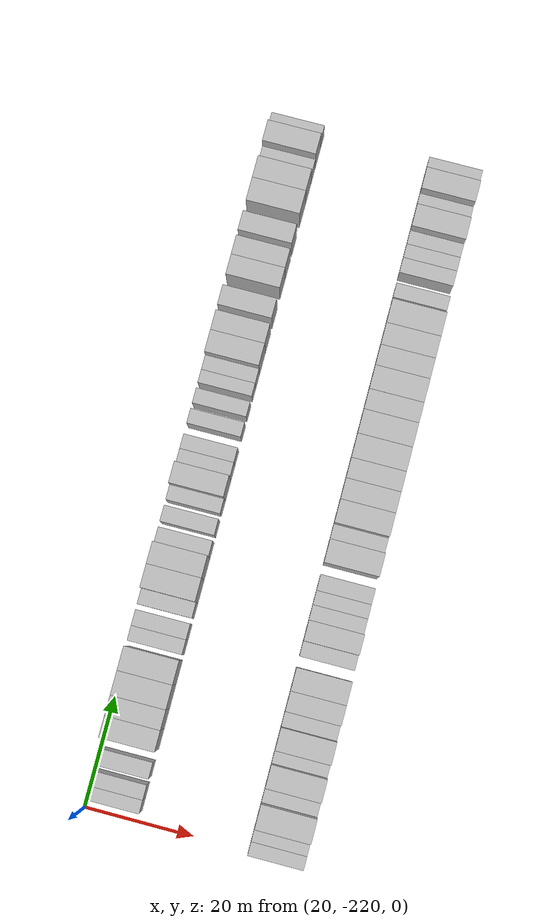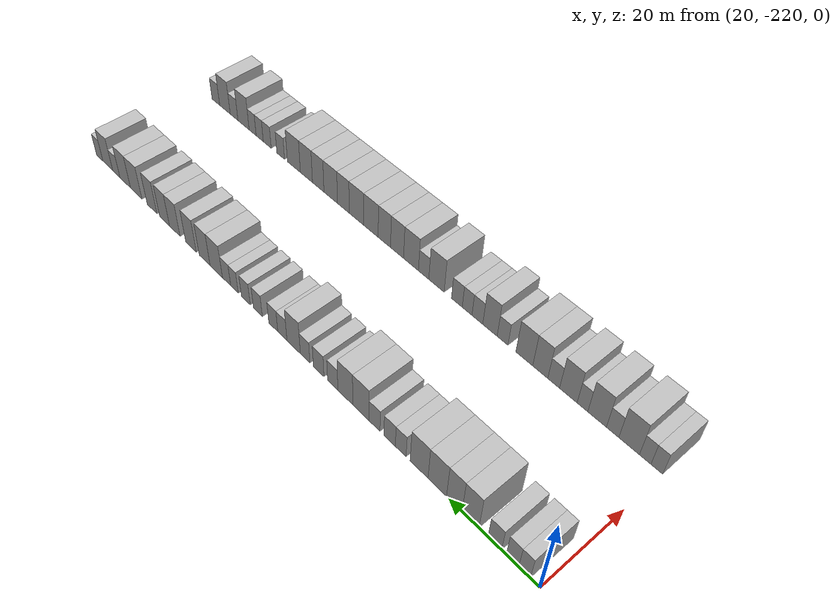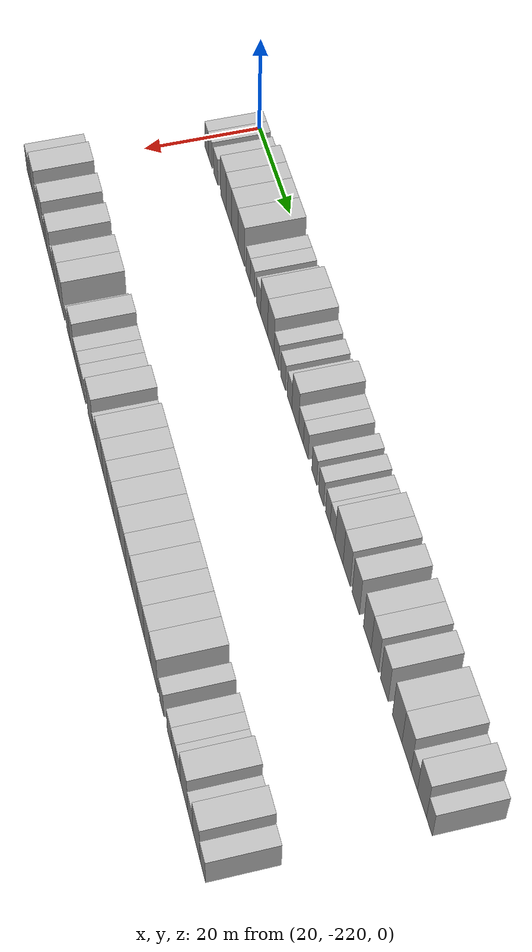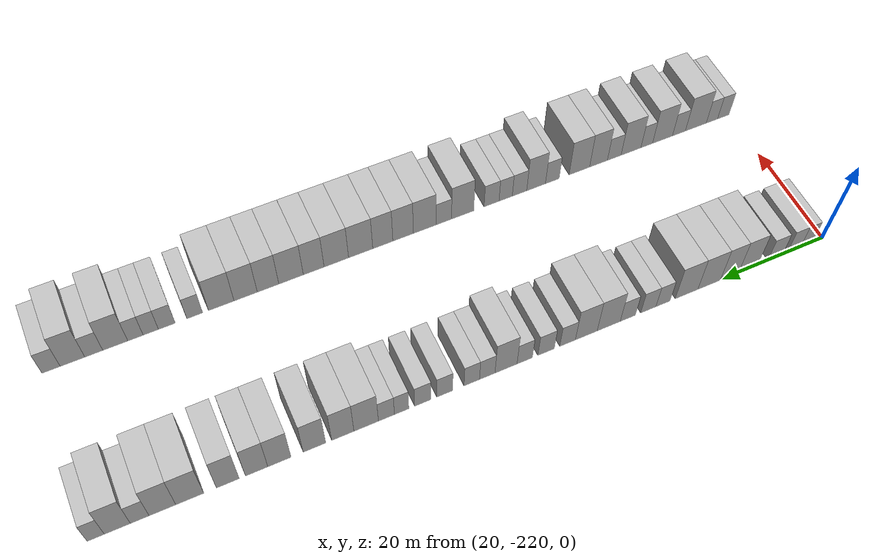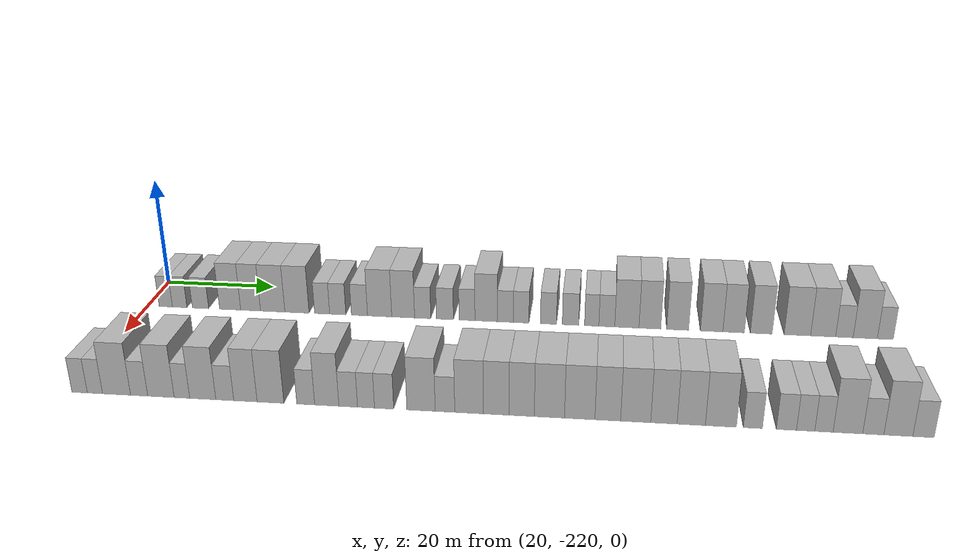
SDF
<sdf version="1.6">
 <world name="default">
  <model name="building_1">
   <static>1</static>
   <pose>25.0000 -216.7760 0 0.000000 0.000000 0.000000</pose>
   <link name="link">
    <pose>0 0 3.00 0 0 0</pose>
    <collision name="collision"><geometry><box><size>10.0000 2.4479 6.0000</size></box></geometry></collision>
    <visual name="visual">
     <cast_shadows>0</cast_shadows>
     <geometry><box><size>10.0000 2.4479 6.0000</size></box></geometry>
     <material>
      <script>
       <uri>model://HANNAS_wall/materials/scripts</uri>
       <uri>model://HANNAS_wall/materials/textures</uri>
       <name>vrc/HANNAS_wall</name>
      </script>
     </material>
    </visual>
   </link>
  </model>
  <model name="building_2">
   <static>1</static>
   <pose>25.0000 -214.2134 0 0.000000 0.000000 0.000000</pose>
   <link name="link">
    <pose>0 0 3.00 0 0 0</pose>
    <collision name="collision"><geometry><box><size>10.0000 2.6773 6.0000</size></box></geometry></collision>
    <visual name="visual">
     <cast_shadows>0</cast_shadows>
     <geometry><box><size>10.0000 2.6773 6.0000</size></box></geometry>
     <material>
      <script>
       <uri>model://HANNAS_wall/materials/scripts</uri>
       <uri>model://HANNAS_wall/materials/textures</uri>
       <name>vrc/HANNAS_wall</name>
      </script>
     </material>
    </visual>
   </link>
  </model>
  <model name="building_3">
   <static>1</static>
   <pose>25.0000 -210.3815 0 0.000000 0.000000 0.000000</pose>
   <link name="link">
    <pose>0 0 3.00 0 0 0</pose>
    <collision name="collision"><geometry><box><size>10.0000 2.9865 6.0000</size></box></geometry></collision>
    <visual name="visual">
     <cast_shadows>0</cast_shadows>
     <geometry><box><size>10.0000 2.9865 6.0000</size></box></geometry>
     <material>
      <script>
       <uri>model://HANNAS_wall/materials/scripts</uri>
       <uri>model://HANNAS_wall/materials/textures</uri>
       <name>vrc/HANNAS_wall</name>
      </script>
     </material>
    </visual>
   </link>
  </model>
  <model name="building_4">
   <static>1</static>
   <pose>25.0000 -204.9679 0 0.000000 0.000000 0.000000</pose>
   <link name="link">
    <pose>0 0 4.50 0 0 0</pose>
    <collision name="collision"><geometry><box><size>10.0000 3.8408 9.0000</size></box></geometry></collision>
    <visual name="visual">
     <cast_shadows>0</cast_shadows>
     <geometry><box><size>10.0000 3.8408 9.0000</size></box></geometry>
     <material>
      <script>
       <uri>model://HANNAS_wall/materials/scripts</uri>
       <uri>model://HANNAS_wall/materials/textures</uri>
       <name>vrc/HANNAS_wall</name>
      </script>
     </material>
    </visual>
   </link>
  </model>
  <model name="building_5">
   <static>1</static>
   <pose>25.0000 -201.2389 0 0.000000 0.000000 0.000000</pose>
   <link name="link">
    <pose>0 0 4.50 0 0 0</pose>
    <collision name="collision"><geometry><box><size>10.0000 3.6171 9.0000</size></box></geometry></collision>
    <visual name="visual">
     <cast_shadows>0</cast_shadows>
     <geometry><box><size>10.0000 3.6171 9.0000</size></box></geometry>
     <material>
      <script>
       <uri>model://HANNAS_wall/materials/scripts</uri>
       <uri>model://HANNAS_wall/materials/textures</uri>
       <name>vrc/HANNAS_wall</name>
      </script>
     </material>
    </visual>
   </link>
  </model>
  <model name="building_6">
   <static>1</static>
   <pose>25.0000 -197.2296 0 0.000000 0.000000 0.000000</pose>
   <link name="link">
    <pose>0 0 4.50 0 0 0</pose>
    <collision name="collision"><geometry><box><size>10.0000 4.4016 9.0000</size></box></geometry></collision>
    <visual name="visual">
     <cast_shadows>0</cast_shadows>
     <geometry><box><size>10.0000 4.4016 9.0000</size></box></geometry>
     <material>
      <script>
       <uri>model://HANNAS_wall/materials/scripts</uri>
       <uri>model://HANNAS_wall/materials/textures</uri>
       <name>vrc/HANNAS_wall</name>
      </script>
     </material>
    </visual>
   </link>
  </model>
  <model name="building_7">
   <static>1</static>
   <pose>25.0000 -192.8415 0 0.000000 0.000000 0.000000</pose>
   <link name="link">
    <pose>0 0 4.50 0 0 0</pose>
    <collision name="collision"><geometry><box><size>10.0000 4.3745 9.0000</size></box></geometry></collision>
    <visual name="visual">
     <cast_shadows>0</cast_shadows>
     <geometry><box><size>10.0000 4.3745 9.0000</size></box></geometry>
     <material>
      <script>
       <uri>model://HANNAS_wall/materials/scripts</uri>
       <uri>model://HANNAS_wall/materials/textures</uri>
       <name>vrc/HANNAS_wall</name>
      </script>
     </material>
    </visual>
   </link>
  </model>
  <model name="building_8">
   <static>1</static>
   <pose>25.0000 -188.3045 0 0.000000 0.000000 0.000000</pose>
   <link name="link">
    <pose>0 0 3.00 0 0 0</pose>
    <collision name="collision"><geometry><box><size>10.0000 2.6996 6.0000</size></box></geometry></collision>
    <visual name="visual">
     <cast_shadows>0</cast_shadows>
     <geometry><box><size>10.0000 2.6996 6.0000</size></box></geometry>
     <material>
      <script>
       <uri>model://HANNAS_wall/materials/scripts</uri>
       <uri>model://HANNAS_wall/materials/textures</uri>
       <name>vrc/HANNAS_wall</name>
      </script>
     </material>
    </visual>
   </link>
  </model>
  <model name="building_9">
   <static>1</static>
   <pose>25.0000 -185.5023 0 0.000000 0.000000 0.000000</pose>
   <link name="link">
    <pose>0 0 3.00 0 0 0</pose>
    <collision name="collision"><geometry><box><size>10.0000 2.9047 6.0000</size></box></geometry></collision>
    <visual name="visual">
     <cast_shadows>0</cast_shadows>
     <geometry><box><size>10.0000 2.9047 6.0000</size></box></geometry>
     <material>
      <script>
       <uri>model://HANNAS_wall/materials/scripts</uri>
       <uri>model://HANNAS_wall/materials/textures</uri>
       <name>vrc/HANNAS_wall</name>
      </script>
     </material>
    </visual>
   </link>
  </model>
  <model name="building_10">
   <static>1</static>
   <pose>25.0000 -181.6182 0 0.000000 0.000000 0.000000</pose>
   <link name="link">
    <pose>0 0 3.00 0 0 0</pose>
    <collision name="collision"><geometry><box><size>10.0000 2.8635 6.0000</size></box></geometry></collision>
    <visual name="visual">
     <cast_shadows>0</cast_shadows>
     <geometry><box><size>10.0000 2.8635 6.0000</size></box></geometry>
     <material>
      <script>
       <uri>model://HANNAS_wall/materials/scripts</uri>
       <uri>model://HANNAS_wall/materials/textures</uri>
       <name>vrc/HANNAS_wall</name>
      </script>
     </material>
    </visual>
   </link>
  </model>
  <model name="building_11">
   <static>1</static>
   <pose>25.0000 -178.0315 0 0.000000 0.000000 0.000000</pose>
   <link name="link">
    <pose>0 0 4.50 0 0 0</pose>
    <collision name="collision"><geometry><box><size>10.0000 4.3098 9.0000</size></box></geometry></collision>
    <visual name="visual">
     <cast_shadows>0</cast_shadows>
     <geometry><box><size>10.0000 4.3098 9.0000</size></box></geometry>
     <material>
      <script>
       <uri>model://HANNAS_wall/materials/scripts</uri>
       <uri>model://HANNAS_wall/materials/textures</uri>
       <name>vrc/HANNAS_wall</name>
      </script>
     </material>
    </visual>
   </link>
  </model>
  <model name="building_12">
   <static>1</static>
   <pose>25.0000 -173.8464 0 0.000000 0.000000 0.000000</pose>
   <link name="link">
    <pose>0 0 4.50 0 0 0</pose>
    <collision name="collision"><geometry><box><size>10.0000 4.0604 9.0000</size></box></geometry></collision>
    <visual name="visual">
     <cast_shadows>0</cast_shadows>
     <geometry><box><size>10.0000 4.0604 9.0000</size></box></geometry>
     <material>
      <script>
       <uri>model://HANNAS_wall/materials/scripts</uri>
       <uri>model://HANNAS_wall/materials/textures</uri>
       <name>vrc/HANNAS_wall</name>
      </script>
     </material>
    </visual>
   </link>
  </model>
  <model name="building_13">
   <static>1</static>
   <pose>25.0000 -170.3806 0 0.000000 0.000000 0.000000</pose>
   <link name="link">
    <pose>0 0 3.00 0 0 0</pose>
    <collision name="collision"><geometry><box><size>10.0000 2.8712 6.0000</size></box></geometry></collision>
    <visual name="visual">
     <cast_shadows>0</cast_shadows>
     <geometry><box><size>10.0000 2.8712 6.0000</size></box></geometry>
     <material>
      <script>
       <uri>model://HANNAS_wall/materials/scripts</uri>
       <uri>model://HANNAS_wall/materials/textures</uri>
       <name>vrc/HANNAS_wall</name>
      </script>
     </material>
    </visual>
   </link>
  </model>
  <model name="building_14">
   <static>1</static>
   <pose>25.0000 -166.4511 0 0.000000 0.000000 0.000000</pose>
   <link name="link">
    <pose>0 0 3.00 0 0 0</pose>
    <collision name="collision"><geometry><box><size>10.0000 2.9879 6.0000</size></box></geometry></collision>
    <visual name="visual">
     <cast_shadows>0</cast_shadows>
     <geometry><box><size>10.0000 2.9879 6.0000</size></box></geometry>
     <material>
      <script>
       <uri>model://HANNAS_wall/materials/scripts</uri>
       <uri>model://HANNAS_wall/materials/textures</uri>
       <name>vrc/HANNAS_wall</name>
      </script>
     </material>
    </visual>
   </link>
  </model>
  <model name="building_15">
   <static>1</static>
   <pose>25.0000 -162.5718 0 0.000000 0.000000 0.000000</pose>
   <link name="link">
    <pose>0 0 3.00 0 0 0</pose>
    <collision name="collision"><geometry><box><size>10.0000 2.7707 6.0000</size></box></geometry></collision>
    <visual name="visual">
     <cast_shadows>0</cast_shadows>
     <geometry><box><size>10.0000 2.7707 6.0000</size></box></geometry>
     <material>
      <script>
       <uri>model://HANNAS_wall/materials/scripts</uri>
       <uri>model://HANNAS_wall/materials/textures</uri>
       <name>vrc/HANNAS_wall</name>
      </script>
     </material>
    </visual>
   </link>
  </model>
  <model name="building_16">
   <static>1</static>
   <pose>25.0000 -159.2121 0 0.000000 0.000000 0.000000</pose>
   <link name="link">
    <pose>0 0 4.50 0 0 0</pose>
    <collision name="collision"><geometry><box><size>10.0000 3.9487 9.0000</size></box></geometry></collision>
    <visual name="visual">
     <cast_shadows>0</cast_shadows>
     <geometry><box><size>10.0000 3.9487 9.0000</size></box></geometry>
     <material>
      <script>
       <uri>model://HANNAS_wall/materials/scripts</uri>
       <uri>model://HANNAS_wall/materials/textures</uri>
       <name>vrc/HANNAS_wall</name>
      </script>
     </material>
    </visual>
   </link>
  </model>
  <model name="building_17">
   <static>1</static>
   <pose>25.0000 -155.8626 0 0.000000 0.000000 0.000000</pose>
   <link name="link">
    <pose>0 0 3.00 0 0 0</pose>
    <collision name="collision"><geometry><box><size>10.0000 2.7504 6.0000</size></box></geometry></collision>
    <visual name="visual">
     <cast_shadows>0</cast_shadows>
     <geometry><box><size>10.0000 2.7504 6.0000</size></box></geometry>
     <material>
      <script>
       <uri>model://HANNAS_wall/materials/scripts</uri>
       <uri>model://HANNAS_wall/materials/textures</uri>
       <name>vrc/HANNAS_wall</name>
      </script>
     </material>
    </visual>
   </link>
  </model>
  <model name="building_18">
   <static>1</static>
   <pose>25.0000 -153.1238 0 0.000000 0.000000 0.000000</pose>
   <link name="link">
    <pose>0 0 3.00 0 0 0</pose>
    <collision name="collision"><geometry><box><size>10.0000 2.7271 6.0000</size></box></geometry></collision>
    <visual name="visual">
     <cast_shadows>0</cast_shadows>
     <geometry><box><size>10.0000 2.7271 6.0000</size></box></geometry>
     <material>
      <script>
       <uri>model://HANNAS_wall/materials/scripts</uri>
       <uri>model://HANNAS_wall/materials/textures</uri>
       <name>vrc/HANNAS_wall</name>
      </script>
     </material>
    </visual>
   </link>
  </model>
  <model name="building_19">
   <static>1</static>
   <pose>25.0000 -148.3723 0 0.000000 0.000000 0.000000</pose>
   <link name="link">
    <pose>0 0 3.00 0 0 0</pose>
    <collision name="collision"><geometry><box><size>10.0000 2.7759 6.0000</size></box></geometry></collision>
    <visual name="visual">
     <cast_shadows>0</cast_shadows>
     <geometry><box><size>10.0000 2.7759 6.0000</size></box></geometry>
     <material>
      <script>
       <uri>model://HANNAS_wall/materials/scripts</uri>
       <uri>model://HANNAS_wall/materials/textures</uri>
       <name>vrc/HANNAS_wall</name>
      </script>
     </material>
    </visual>
   </link>
  </model>
  <model name="building_20">
   <static>1</static>
   <pose>25.0000 -144.5683 0 0.000000 0.000000 0.000000</pose>
   <link name="link">
    <pose>0 0 3.00 0 0 0</pose>
    <collision name="collision"><geometry><box><size>10.0000 2.8321 6.0000</size></box></geometry></collision>
    <visual name="visual">
     <cast_shadows>0</cast_shadows>
     <geometry><box><size>10.0000 2.8321 6.0000</size></box></geometry>
     <material>
      <script>
       <uri>model://HANNAS_wall/materials/scripts</uri>
       <uri>model://HANNAS_wall/materials/textures</uri>
       <name>vrc/HANNAS_wall</name>
      </script>
     </material>
    </visual>
   </link>
  </model>
  <model name="building_21">
   <static>1</static>
   <pose>25.0000 -140.9230 0 0.000000 0.000000 0.000000</pose>
   <link name="link">
    <pose>0 0 3.00 0 0 0</pose>
    <collision name="collision"><geometry><box><size>10.0000 2.4585 6.0000</size></box></geometry></collision>
    <visual name="visual">
     <cast_shadows>0</cast_shadows>
     <geometry><box><size>10.0000 2.4585 6.0000</size></box></geometry>
     <material>
      <script>
       <uri>model://HANNAS_wall/materials/scripts</uri>
       <uri>model://HANNAS_wall/materials/textures</uri>
       <name>vrc/HANNAS_wall</name>
      </script>
     </material>
    </visual>
   </link>
  </model>
  <model name="building_22">
   <static>1</static>
   <pose>25.0000 -138.3307 0 0.000000 0.000000 0.000000</pose>
   <link name="link">
    <pose>0 0 3.00 0 0 0</pose>
    <collision name="collision"><geometry><box><size>10.0000 2.7261 6.0000</size></box></geometry></collision>
    <visual name="visual">
     <cast_shadows>0</cast_shadows>
     <geometry><box><size>10.0000 2.7261 6.0000</size></box></geometry>
     <material>
      <script>
       <uri>model://HANNAS_wall/materials/scripts</uri>
       <uri>model://HANNAS_wall/materials/textures</uri>
       <name>vrc/HANNAS_wall</name>
      </script>
     </material>
    </visual>
   </link>
  </model>
  <model name="building_23">
   <static>1</static>
   <pose>25.0000 -134.8988 0 0.000000 0.000000 0.000000</pose>
   <link name="link">
    <pose>0 0 4.50 0 0 0</pose>
    <collision name="collision"><geometry><box><size>10.0000 4.1376 9.0000</size></box></geometry></collision>
    <visual name="visual">
     <cast_shadows>0</cast_shadows>
     <geometry><box><size>10.0000 4.1376 9.0000</size></box></geometry>
     <material>
      <script>
       <uri>model://HANNAS_wall/materials/scripts</uri>
       <uri>model://HANNAS_wall/materials/textures</uri>
       <name>vrc/HANNAS_wall</name>
      </script>
     </material>
    </visual>
   </link>
  </model>
  <model name="building_24">
   <static>1</static>
   <pose>25.0000 -130.9701 0 0.000000 0.000000 0.000000</pose>
   <link name="link">
    <pose>0 0 4.50 0 0 0</pose>
    <collision name="collision"><geometry><box><size>10.0000 3.7199 9.0000</size></box></geometry></collision>
    <visual name="visual">
     <cast_shadows>0</cast_shadows>
     <geometry><box><size>10.0000 3.7199 9.0000</size></box></geometry>
     <material>
      <script>
       <uri>model://HANNAS_wall/materials/scripts</uri>
       <uri>model://HANNAS_wall/materials/textures</uri>
       <name>vrc/HANNAS_wall</name>
      </script>
     </material>
    </visual>
   </link>
  </model>
  <model name="building_25">
   <static>1</static>
   <pose>25.0000 -126.2509 0 0.000000 0.000000 0.000000</pose>
   <link name="link">
    <pose>0 0 4.50 0 0 0</pose>
    <collision name="collision"><geometry><box><size>10.0000 3.7184 9.0000</size></box></geometry></collision>
    <visual name="visual">
     <cast_shadows>0</cast_shadows>
     <geometry><box><size>10.0000 3.7184 9.0000</size></box></geometry>
     <material>
      <script>
       <uri>model://HANNAS_wall/materials/scripts</uri>
       <uri>model://HANNAS_wall/materials/textures</uri>
       <name>vrc/HANNAS_wall</name>
      </script>
     </material>
    </visual>
   </link>
  </model>
  <model name="building_26">
   <static>1</static>
   <pose>25.0000 -120.4995 0 0.000000 0.000000 0.000000</pose>
   <link name="link">
    <pose>0 0 4.50 0 0 0</pose>
    <collision name="collision"><geometry><box><size>10.0000 3.7845 9.0000</size></box></geometry></collision>
    <visual name="visual">
     <cast_shadows>0</cast_shadows>
     <geometry><box><size>10.0000 3.7845 9.0000</size></box></geometry>
     <material>
      <script>
       <uri>model://HANNAS_wall/materials/scripts</uri>
       <uri>model://HANNAS_wall/materials/textures</uri>
       <name>vrc/HANNAS_wall</name>
      </script>
     </material>
    </visual>
   </link>
  </model>
  <model name="building_27">
   <static>1</static>
   <pose>25.0000 -116.7994 0 0.000000 0.000000 0.000000</pose>
   <link name="link">
    <pose>0 0 4.50 0 0 0</pose>
    <collision name="collision"><geometry><box><size>10.0000 3.6157 9.0000</size></box></geometry></collision>
    <visual name="visual">
     <cast_shadows>0</cast_shadows>
     <geometry><box><size>10.0000 3.6157 9.0000</size></box></geometry>
     <material>
      <script>
       <uri>model://HANNAS_wall/materials/scripts</uri>
       <uri>model://HANNAS_wall/materials/textures</uri>
       <name>vrc/HANNAS_wall</name>
      </script>
     </material>
    </visual>
   </link>
  </model>
  <model name="building_28">
   <static>1</static>
   <pose>25.0000 -112.1677 0 0.000000 0.000000 0.000000</pose>
   <link name="link">
    <pose>0 0 4.50 0 0 0</pose>
    <collision name="collision"><geometry><box><size>10.0000 3.6477 9.0000</size></box></geometry></collision>
    <visual name="visual">
     <cast_shadows>0</cast_shadows>
     <geometry><box><size>10.0000 3.6477 9.0000</size></box></geometry>
     <material>
      <script>
       <uri>model://HANNAS_wall/materials/scripts</uri>
       <uri>model://HANNAS_wall/materials/textures</uri>
       <name>vrc/HANNAS_wall</name>
      </script>
     </material>
    </visual>
   </link>
  </model>
  <model name="building_29">
   <static>1</static>
   <pose>25.0000 -106.1421 0 0.000000 0.000000 0.000000</pose>
   <link name="link">
    <pose>0 0 4.50 0 0 0</pose>
    <collision name="collision"><geometry><box><size>10.0000 4.4034 9.0000</size></box></geometry></collision>
    <visual name="visual">
     <cast_shadows>0</cast_shadows>
     <geometry><box><size>10.0000 4.4034 9.0000</size></box></geometry>
     <material>
      <script>
       <uri>model://HANNAS_wall/materials/scripts</uri>
       <uri>model://HANNAS_wall/materials/textures</uri>
       <name>vrc/HANNAS_wall</name>
      </script>
     </material>
    </visual>
   </link>
  </model>
  <model name="building_30">
   <static>1</static>
   <pose>25.0000 -101.8638 0 0.000000 0.000000 0.000000</pose>
   <link name="link">
    <pose>0 0 4.50 0 0 0</pose>
    <collision name="collision"><geometry><box><size>10.0000 4.1531 9.0000</size></box></geometry></collision>
    <visual name="visual">
     <cast_shadows>0</cast_shadows>
     <geometry><box><size>10.0000 4.1531 9.0000</size></box></geometry>
     <material>
      <script>
       <uri>model://HANNAS_wall/materials/scripts</uri>
       <uri>model://HANNAS_wall/materials/textures</uri>
       <name>vrc/HANNAS_wall</name>
      </script>
     </material>
    </visual>
   </link>
  </model>
  <model name="building_31">
   <static>1</static>
   <pose>25.0000 -98.3451 0 0.000000 0.000000 0.000000</pose>
   <link name="link">
    <pose>0 0 3.00 0 0 0</pose>
    <collision name="collision"><geometry><box><size>10.0000 2.8844 6.0000</size></box></geometry></collision>
    <visual name="visual">
     <cast_shadows>0</cast_shadows>
     <geometry><box><size>10.0000 2.8844 6.0000</size></box></geometry>
     <material>
      <script>
       <uri>model://HANNAS_wall/materials/scripts</uri>
       <uri>model://HANNAS_wall/materials/textures</uri>
       <name>vrc/HANNAS_wall</name>
      </script>
     </material>
    </visual>
   </link>
  </model>
  <model name="building_32">
   <static>1</static>
   <pose>25.0000 -94.9095 0 0.000000 0.000000 0.000000</pose>
   <link name="link">
    <pose>0 0 4.50 0 0 0</pose>
    <collision name="collision"><geometry><box><size>10.0000 3.9868 9.0000</size></box></geometry></collision>
    <visual name="visual">
     <cast_shadows>0</cast_shadows>
     <geometry><box><size>10.0000 3.9868 9.0000</size></box></geometry>
     <material>
      <script>
       <uri>model://HANNAS_wall/materials/scripts</uri>
       <uri>model://HANNAS_wall/materials/textures</uri>
       <name>vrc/HANNAS_wall</name>
      </script>
     </material>
    </visual>
   </link>
  </model>
  <model name="building_33">
   <static>1</static>
   <pose>25.0000 -91.6097 0 0.000000 0.000000 0.000000</pose>
   <link name="link">
    <pose>0 0 3.00 0 0 0</pose>
    <collision name="collision"><geometry><box><size>10.0000 2.6127 6.0000</size></box></geometry></collision>
    <visual name="visual">
     <cast_shadows>0</cast_shadows>
     <geometry><box><size>10.0000 2.6127 6.0000</size></box></geometry>
     <material>
      <script>
       <uri>model://HANNAS_wall/materials/scripts</uri>
       <uri>model://HANNAS_wall/materials/textures</uri>
       <name>vrc/HANNAS_wall</name>
      </script>
     </material>
    </visual>
   </link>
  </model>
  <model name="building_92">
   <static>1</static>
   <pose>55.0000 -218.7696 0 0.000000 0.000000 0.000000</pose>
   <link name="link">
    <pose>0 0 3.00 0 0 0</pose>
    <collision name="collision"><geometry><box><size>10.0000 2.4608 6.0000</size></box></geometry></collision>
    <visual name="visual">
     <cast_shadows>0</cast_shadows>
     <geometry><box><size>10.0000 2.4608 6.0000</size></box></geometry>
     <material>
      <script>
       <uri>model://HANNAS_wall/materials/scripts</uri>
       <uri>model://HANNAS_wall/materials/textures</uri>
       <name>vrc/HANNAS_wall</name>
      </script>
     </material>
    </visual>
   </link>
  </model>
  <model name="building_93">
   <static>1</static>
   <pose>55.0000 -216.3225 0 0.000000 0.000000 0.000000</pose>
   <link name="link">
    <pose>0 0 3.00 0 0 0</pose>
    <collision name="collision"><geometry><box><size>10.0000 2.4333 6.0000</size></box></geometry></collision>
    <visual name="visual">
     <cast_shadows>0</cast_shadows>
     <geometry><box><size>10.0000 2.4333 6.0000</size></box></geometry>
     <material>
      <script>
       <uri>model://HANNAS_wall/materials/scripts</uri>
       <uri>model://HANNAS_wall/materials/textures</uri>
       <name>vrc/HANNAS_wall</name>
      </script>
     </material>
    </visual>
   </link>
  </model>
  <model name="building_94">
   <static>1</static>
   <pose>55.0000 -212.8778 0 0.000000 0.000000 0.000000</pose>
   <link name="link">
    <pose>0 0 4.50 0 0 0</pose>
    <collision name="collision"><geometry><box><size>10.0000 4.4562 9.0000</size></box></geometry></collision>
    <visual name="visual">
     <cast_shadows>0</cast_shadows>
     <geometry><box><size>10.0000 4.4562 9.0000</size></box></geometry>
     <material>
      <script>
       <uri>model://HANNAS_wall/materials/scripts</uri>
       <uri>model://HANNAS_wall/materials/textures</uri>
       <name>vrc/HANNAS_wall</name>
      </script>
     </material>
    </visual>
   </link>
  </model>
  <model name="building_95">
   <static>1</static>
   <pose>55.0000 -209.2882 0 0.000000 0.000000 0.000000</pose>
   <link name="link">
    <pose>0 0 3.00 0 0 0</pose>
    <collision name="collision"><geometry><box><size>10.0000 2.7229 6.0000</size></box></geometry></collision>
    <visual name="visual">
     <cast_shadows>0</cast_shadows>
     <geometry><box><size>10.0000 2.7229 6.0000</size></box></geometry>
     <material>
      <script>
       <uri>model://HANNAS_wall/materials/scripts</uri>
       <uri>model://HANNAS_wall/materials/textures</uri>
       <name>vrc/HANNAS_wall</name>
      </script>
     </material>
    </visual>
   </link>
  </model>
  <model name="building_96">
   <static>1</static>
   <pose>55.0000 -205.8339 0 0.000000 0.000000 0.000000</pose>
   <link name="link">
    <pose>0 0 4.50 0 0 0</pose>
    <collision name="collision"><geometry><box><size>10.0000 4.1857 9.0000</size></box></geometry></collision>
    <visual name="visual">
     <cast_shadows>0</cast_shadows>
     <geometry><box><size>10.0000 4.1857 9.0000</size></box></geometry>
     <material>
      <script>
       <uri>model://HANNAS_wall/materials/scripts</uri>
       <uri>model://HANNAS_wall/materials/textures</uri>
       <name>vrc/HANNAS_wall</name>
      </script>
     </material>
    </visual>
   </link>
  </model>
  <model name="building_97">
   <static>1</static>
   <pose>55.0000 -202.5246 0 0.000000 0.000000 0.000000</pose>
   <link name="link">
    <pose>0 0 3.00 0 0 0</pose>
    <collision name="collision"><geometry><box><size>10.0000 2.4330 6.0000</size></box></geometry></collision>
    <visual name="visual">
     <cast_shadows>0</cast_shadows>
     <geometry><box><size>10.0000 2.4330 6.0000</size></box></geometry>
     <material>
      <script>
       <uri>model://HANNAS_wall/materials/scripts</uri>
       <uri>model://HANNAS_wall/materials/textures</uri>
       <name>vrc/HANNAS_wall</name>
      </script>
     </material>
    </visual>
   </link>
  </model>
  <model name="building_98">
   <static>1</static>
   <pose>55.0000 -199.2573 0 0.000000 0.000000 0.000000</pose>
   <link name="link">
    <pose>0 0 4.50 0 0 0</pose>
    <collision name="collision"><geometry><box><size>10.0000 4.1016 9.0000</size></box></geometry></collision>
    <visual name="visual">
     <cast_shadows>0</cast_shadows>
     <geometry><box><size>10.0000 4.1016 9.0000</size></box></geometry>
     <material>
      <script>
       <uri>model://HANNAS_wall/materials/scripts</uri>
       <uri>model://HANNAS_wall/materials/textures</uri>
       <name>vrc/HANNAS_wall</name>
      </script>
     </material>
    </visual>
   </link>
  </model>
  <model name="building_99">
   <static>1</static>
   <pose>55.0000 -195.8041 0 0.000000 0.000000 0.000000</pose>
   <link name="link">
    <pose>0 0 3.00 0 0 0</pose>
    <collision name="collision"><geometry><box><size>10.0000 2.8049 6.0000</size></box></geometry></collision>
    <visual name="visual">
     <cast_shadows>0</cast_shadows>
     <geometry><box><size>10.0000 2.8049 6.0000</size></box></geometry>
     <material>
      <script>
       <uri>model://HANNAS_wall/materials/scripts</uri>
       <uri>model://HANNAS_wall/materials/textures</uri>
       <name>vrc/HANNAS_wall</name>
      </script>
     </material>
    </visual>
   </link>
  </model>
  <model name="building_100">
   <static>1</static>
   <pose>55.0000 -192.5841 0 0.000000 0.000000 0.000000</pose>
   <link name="link">
    <pose>0 0 4.50 0 0 0</pose>
    <collision name="collision"><geometry><box><size>10.0000 3.6351 9.0000</size></box></geometry></collision>
    <visual name="visual">
     <cast_shadows>0</cast_shadows>
     <geometry><box><size>10.0000 3.6351 9.0000</size></box></geometry>
     <material>
      <script>
       <uri>model://HANNAS_wall/materials/scripts</uri>
       <uri>model://HANNAS_wall/materials/textures</uri>
       <name>vrc/HANNAS_wall</name>
      </script>
     </material>
    </visual>
   </link>
  </model>
  <model name="building_101">
   <static>1</static>
   <pose>55.0000 -188.6888 0 0.000000 0.000000 0.000000</pose>
   <link name="link">
    <pose>0 0 4.50 0 0 0</pose>
    <collision name="collision"><geometry><box><size>10.0000 4.1557 9.0000</size></box></geometry></collision>
    <visual name="visual">
     <cast_shadows>0</cast_shadows>
     <geometry><box><size>10.0000 4.1557 9.0000</size></box></geometry>
     <material>
      <script>
       <uri>model://HANNAS_wall/materials/scripts</uri>
       <uri>model://HANNAS_wall/materials/textures</uri>
       <name>vrc/HANNAS_wall</name>
      </script>
     </material>
    </visual>
   </link>
  </model>
  <model name="building_102">
   <static>1</static>
   <pose>55.0000 -183.2328 0 0.000000 0.000000 0.000000</pose>
   <link name="link">
    <pose>0 0 3.00 0 0 0</pose>
    <collision name="collision"><geometry><box><size>10.0000 2.7562 6.0000</size></box></geometry></collision>
    <visual name="visual">
     <cast_shadows>0</cast_shadows>
     <geometry><box><size>10.0000 2.7562 6.0000</size></box></geometry>
     <material>
      <script>
       <uri>model://HANNAS_wall/materials/scripts</uri>
       <uri>model://HANNAS_wall/materials/textures</uri>
       <name>vrc/HANNAS_wall</name>
      </script>
     </material>
    </visual>
   </link>
  </model>
  <model name="building_103">
   <static>1</static>
   <pose>55.0000 -179.9951 0 0.000000 0.000000 0.000000</pose>
   <link name="link">
    <pose>0 0 4.50 0 0 0</pose>
    <collision name="collision"><geometry><box><size>10.0000 3.7193 9.0000</size></box></geometry></collision>
    <visual name="visual">
     <cast_shadows>0</cast_shadows>
     <geometry><box><size>10.0000 3.7193 9.0000</size></box></geometry>
     <material>
      <script>
       <uri>model://HANNAS_wall/materials/scripts</uri>
       <uri>model://HANNAS_wall/materials/textures</uri>
       <name>vrc/HANNAS_wall</name>
      </script>
     </material>
    </visual>
   </link>
  </model>
  <model name="building_104">
   <static>1</static>
   <pose>55.0000 -176.7114 0 0.000000 0.000000 0.000000</pose>
   <link name="link">
    <pose>0 0 3.00 0 0 0</pose>
    <collision name="collision"><geometry><box><size>10.0000 2.8480 6.0000</size></box></geometry></collision>
    <visual name="visual">
     <cast_shadows>0</cast_shadows>
     <geometry><box><size>10.0000 2.8480 6.0000</size></box></geometry>
     <material>
      <script>
       <uri>model://HANNAS_wall/materials/scripts</uri>
       <uri>model://HANNAS_wall/materials/textures</uri>
       <name>vrc/HANNAS_wall</name>
      </script>
     </material>
    </visual>
   </link>
  </model>
  <model name="building_105">
   <static>1</static>
   <pose>55.0000 -173.9896 0 0.000000 0.000000 0.000000</pose>
   <link name="link">
    <pose>0 0 3.00 0 0 0</pose>
    <collision name="collision"><geometry><box><size>10.0000 2.5957 6.0000</size></box></geometry></collision>
    <visual name="visual">
     <cast_shadows>0</cast_shadows>
     <geometry><box><size>10.0000 2.5957 6.0000</size></box></geometry>
     <material>
      <script>
       <uri>model://HANNAS_wall/materials/scripts</uri>
       <uri>model://HANNAS_wall/materials/textures</uri>
       <name>vrc/HANNAS_wall</name>
      </script>
     </material>
    </visual>
   </link>
  </model>
  <model name="building_106">
   <static>1</static>
   <pose>55.0000 -171.2312 0 0.000000 0.000000 0.000000</pose>
   <link name="link">
    <pose>0 0 3.00 0 0 0</pose>
    <collision name="collision"><geometry><box><size>10.0000 2.9211 6.0000</size></box></geometry></collision>
    <visual name="visual">
     <cast_shadows>0</cast_shadows>
     <geometry><box><size>10.0000 2.9211 6.0000</size></box></geometry>
     <material>
      <script>
       <uri>model://HANNAS_wall/materials/scripts</uri>
       <uri>model://HANNAS_wall/materials/textures</uri>
       <name>vrc/HANNAS_wall</name>
      </script>
     </material>
    </visual>
   </link>
  </model>
  <model name="building_107">
   <static>1</static>
   <pose>55.0000 -165.6251 0 0.000000 0.000000 0.000000</pose>
   <link name="link">
    <pose>0 0 4.50 0 0 0</pose>
    <collision name="collision"><geometry><box><size>10.0000 4.2911 9.0000</size></box></geometry></collision>
    <visual name="visual">
     <cast_shadows>0</cast_shadows>
     <geometry><box><size>10.0000 4.2911 9.0000</size></box></geometry>
     <material>
      <script>
       <uri>model://HANNAS_wall/materials/scripts</uri>
       <uri>model://HANNAS_wall/materials/textures</uri>
       <name>vrc/HANNAS_wall</name>
      </script>
     </material>
    </visual>
   </link>
  </model>
  <model name="building_108">
   <static>1</static>
   <pose>55.0000 -162.0074 0 0.000000 0.000000 0.000000</pose>
   <link name="link">
    <pose>0 0 3.00 0 0 0</pose>
    <collision name="collision"><geometry><box><size>10.0000 2.9443 6.0000</size></box></geometry></collision>
    <visual name="visual">
     <cast_shadows>0</cast_shadows>
     <geometry><box><size>10.0000 2.9443 6.0000</size></box></geometry>
     <material>
      <script>
       <uri>model://HANNAS_wall/materials/scripts</uri>
       <uri>model://HANNAS_wall/materials/textures</uri>
       <name>vrc/HANNAS_wall</name>
      </script>
     </material>
    </visual>
   </link>
  </model>
  <model name="building_109">
   <static>1</static>
   <pose>55.0000 -158.3813 0 0.000000 0.000000 0.000000</pose>
   <link name="link">
    <pose>0 0 4.50 0 0 0</pose>
    <collision name="collision"><geometry><box><size>10.0000 4.3080 9.0000</size></box></geometry></collision>
    <visual name="visual">
     <cast_shadows>0</cast_shadows>
     <geometry><box><size>10.0000 4.3080 9.0000</size></box></geometry>
     <material>
      <script>
       <uri>model://HANNAS_wall/materials/scripts</uri>
       <uri>model://HANNAS_wall/materials/textures</uri>
       <name>vrc/HANNAS_wall</name>
      </script>
     </material>
    </visual>
   </link>
  </model>
  <model name="building_110">
   <static>1</static>
   <pose>55.0000 -154.3003 0 0.000000 0.000000 0.000000</pose>
   <link name="link">
    <pose>0 0 4.50 0 0 0</pose>
    <collision name="collision"><geometry><box><size>10.0000 3.8540 9.0000</size></box></geometry></collision>
    <visual name="visual">
     <cast_shadows>0</cast_shadows>
     <geometry><box><size>10.0000 3.8540 9.0000</size></box></geometry>
     <material>
      <script>
       <uri>model://HANNAS_wall/materials/scripts</uri>
       <uri>model://HANNAS_wall/materials/textures</uri>
       <name>vrc/HANNAS_wall</name>
      </script>
     </material>
    </visual>
   </link>
  </model>
  <model name="building_111">
   <static>1</static>
   <pose>55.0000 -150.5039 0 0.000000 0.000000 0.000000</pose>
   <link name="link">
    <pose>0 0 4.50 0 0 0</pose>
    <collision name="collision"><geometry><box><size>10.0000 3.7386 9.0000</size></box></geometry></collision>
    <visual name="visual">
     <cast_shadows>0</cast_shadows>
     <geometry><box><size>10.0000 3.7386 9.0000</size></box></geometry>
     <material>
      <script>
       <uri>model://HANNAS_wall/materials/scripts</uri>
       <uri>model://HANNAS_wall/materials/textures</uri>
       <name>vrc/HANNAS_wall</name>
      </script>
     </material>
    </visual>
   </link>
  </model>
  <model name="building_112">
   <static>1</static>
   <pose>55.0000 -146.4015 0 0.000000 0.000000 0.000000</pose>
   <link name="link">
    <pose>0 0 4.50 0 0 0</pose>
    <collision name="collision"><geometry><box><size>10.0000 4.4661 9.0000</size></box></geometry></collision>
    <visual name="visual">
     <cast_shadows>0</cast_shadows>
     <geometry><box><size>10.0000 4.4661 9.0000</size></box></geometry>
     <material>
      <script>
       <uri>model://HANNAS_wall/materials/scripts</uri>
       <uri>model://HANNAS_wall/materials/textures</uri>
       <name>vrc/HANNAS_wall</name>
      </script>
     </material>
    </visual>
   </link>
  </model>
  <model name="building_113">
   <static>1</static>
   <pose>55.0000 -141.9289 0 0.000000 0.000000 0.000000</pose>
   <link name="link">
    <pose>0 0 4.50 0 0 0</pose>
    <collision name="collision"><geometry><box><size>10.0000 4.4792 9.0000</size></box></geometry></collision>
    <visual name="visual">
     <cast_shadows>0</cast_shadows>
     <geometry><box><size>10.0000 4.4792 9.0000</size></box></geometry>
     <material>
      <script>
       <uri>model://HANNAS_wall/materials/scripts</uri>
       <uri>model://HANNAS_wall/materials/textures</uri>
       <name>vrc/HANNAS_wall</name>
      </script>
     </material>
    </visual>
   </link>
  </model>
  <model name="building_114">
   <static>1</static>
   <pose>55.0000 -137.8092 0 0.000000 0.000000 0.000000</pose>
   <link name="link">
    <pose>0 0 4.50 0 0 0</pose>
    <collision name="collision"><geometry><box><size>10.0000 3.7602 9.0000</size></box></geometry></collision>
    <visual name="visual">
     <cast_shadows>0</cast_shadows>
     <geometry><box><size>10.0000 3.7602 9.0000</size></box></geometry>
     <material>
      <script>
       <uri>model://HANNAS_wall/materials/scripts</uri>
       <uri>model://HANNAS_wall/materials/textures</uri>
       <name>vrc/HANNAS_wall</name>
      </script>
     </material>
    </visual>
   </link>
  </model>
  <model name="building_115">
   <static>1</static>
   <pose>55.0000 -133.7262 0 0.000000 0.000000 0.000000</pose>
   <link name="link">
    <pose>0 0 4.50 0 0 0</pose>
    <collision name="collision"><geometry><box><size>10.0000 4.4057 9.0000</size></box></geometry></collision>
    <visual name="visual">
     <cast_shadows>0</cast_shadows>
     <geometry><box><size>10.0000 4.4057 9.0000</size></box></geometry>
     <material>
      <script>
       <uri>model://HANNAS_wall/materials/scripts</uri>
       <uri>model://HANNAS_wall/materials/textures</uri>
       <name>vrc/HANNAS_wall</name>
      </script>
     </material>
    </visual>
   </link>
  </model>
  <model name="building_116">
   <static>1</static>
   <pose>55.0000 -129.6088 0 0.000000 0.000000 0.000000</pose>
   <link name="link">
    <pose>0 0 4.50 0 0 0</pose>
    <collision name="collision"><geometry><box><size>10.0000 3.8292 9.0000</size></box></geometry></collision>
    <visual name="visual">
     <cast_shadows>0</cast_shadows>
     <geometry><box><size>10.0000 3.8292 9.0000</size></box></geometry>
     <material>
      <script>
       <uri>model://HANNAS_wall/materials/scripts</uri>
       <uri>model://HANNAS_wall/materials/textures</uri>
       <name>vrc/HANNAS_wall</name>
      </script>
     </material>
    </visual>
   </link>
  </model>
  <model name="building_117">
   <static>1</static>
   <pose>55.0000 -125.6442 0 0.000000 0.000000 0.000000</pose>
   <link name="link">
    <pose>0 0 4.50 0 0 0</pose>
    <collision name="collision"><geometry><box><size>10.0000 4.0999 9.0000</size></box></geometry></collision>
    <visual name="visual">
     <cast_shadows>0</cast_shadows>
     <geometry><box><size>10.0000 4.0999 9.0000</size></box></geometry>
     <material>
      <script>
       <uri>model://HANNAS_wall/materials/scripts</uri>
       <uri>model://HANNAS_wall/materials/textures</uri>
       <name>vrc/HANNAS_wall</name>
      </script>
     </material>
    </visual>
   </link>
  </model>
  <model name="building_118">
   <static>1</static>
   <pose>55.0000 -121.3556 0 0.000000 0.000000 0.000000</pose>
   <link name="link">
    <pose>0 0 4.50 0 0 0</pose>
    <collision name="collision"><geometry><box><size>10.0000 4.4773 9.0000</size></box></geometry></collision>
    <visual name="visual">
     <cast_shadows>0</cast_shadows>
     <geometry><box><size>10.0000 4.4773 9.0000</size></box></geometry>
     <material>
      <script>
       <uri>model://HANNAS_wall/materials/scripts</uri>
       <uri>model://HANNAS_wall/materials/textures</uri>
       <name>vrc/HANNAS_wall</name>
      </script>
     </material>
    </visual>
   </link>
  </model>
  <model name="building_119">
   <static>1</static>
   <pose>55.0000 -116.7534 0 0.000000 0.000000 0.000000</pose>
   <link name="link">
    <pose>0 0 3.00 0 0 0</pose>
    <collision name="collision"><geometry><box><size>10.0000 2.7272 6.0000</size></box></geometry></collision>
    <visual name="visual">
     <cast_shadows>0</cast_shadows>
     <geometry><box><size>10.0000 2.7272 6.0000</size></box></geometry>
     <material>
      <script>
       <uri>model://HANNAS_wall/materials/scripts</uri>
       <uri>model://HANNAS_wall/materials/textures</uri>
       <name>vrc/HANNAS_wall</name>
      </script>
     </material>
    </visual>
   </link>
  </model>
  <model name="building_120">
   <static>1</static>
   <pose>55.0000 -111.9594 0 0.000000 0.000000 0.000000</pose>
   <link name="link">
    <pose>0 0 3.00 0 0 0</pose>
    <collision name="collision"><geometry><box><size>10.0000 2.8607 6.0000</size></box></geometry></collision>
    <visual name="visual">
     <cast_shadows>0</cast_shadows>
     <geometry><box><size>10.0000 2.8607 6.0000</size></box></geometry>
     <material>
      <script>
       <uri>model://HANNAS_wall/materials/scripts</uri>
       <uri>model://HANNAS_wall/materials/textures</uri>
       <name>vrc/HANNAS_wall</name>
      </script>
     </material>
    </visual>
   </link>
  </model>
  <model name="building_121">
   <static>1</static>
   <pose>55.0000 -109.2304 0 0.000000 0.000000 0.000000</pose>
   <link name="link">
    <pose>0 0 3.00 0 0 0</pose>
    <collision name="collision"><geometry><box><size>10.0000 2.5973 6.0000</size></box></geometry></collision>
    <visual name="visual">
     <cast_shadows>0</cast_shadows>
     <geometry><box><size>10.0000 2.5973 6.0000</size></box></geometry>
     <material>
      <script>
       <uri>model://HANNAS_wall/materials/scripts</uri>
       <uri>model://HANNAS_wall/materials/textures</uri>
       <name>vrc/HANNAS_wall</name>
      </script>
     </material>
    </visual>
   </link>
  </model>
  <model name="building_122">
   <static>1</static>
   <pose>55.0000 -106.6346 0 0.000000 0.000000 0.000000</pose>
   <link name="link">
    <pose>0 0 3.00 0 0 0</pose>
    <collision name="collision"><geometry><box><size>10.0000 2.5944 6.0000</size></box></geometry></collision>
    <visual name="visual">
     <cast_shadows>0</cast_shadows>
     <geometry><box><size>10.0000 2.5944 6.0000</size></box></geometry>
     <material>
      <script>
       <uri>model://HANNAS_wall/materials/scripts</uri>
       <uri>model://HANNAS_wall/materials/textures</uri>
       <name>vrc/HANNAS_wall</name>
      </script>
     </material>
    </visual>
   </link>
  </model>
  <model name="building_123">
   <static>1</static>
   <pose>55.0000 -103.2430 0 0.000000 0.000000 0.000000</pose>
   <link name="link">
    <pose>0 0 4.50 0 0 0</pose>
    <collision name="collision"><geometry><box><size>10.0000 4.1887 9.0000</size></box></geometry></collision>
    <visual name="visual">
     <cast_shadows>0</cast_shadows>
     <geometry><box><size>10.0000 4.1887 9.0000</size></box></geometry>
     <material>
      <script>
       <uri>model://HANNAS_wall/materials/scripts</uri>
       <uri>model://HANNAS_wall/materials/textures</uri>
       <name>vrc/HANNAS_wall</name>
      </script>
     </material>
    </visual>
   </link>
  </model>
  <model name="building_124">
   <static>1</static>
   <pose>55.0000 -99.6615 0 0.000000 0.000000 0.000000</pose>
   <link name="link">
    <pose>0 0 3.00 0 0 0</pose>
    <collision name="collision"><geometry><box><size>10.0000 2.9742 6.0000</size></box></geometry></collision>
    <visual name="visual">
     <cast_shadows>0</cast_shadows>
     <geometry><box><size>10.0000 2.9742 6.0000</size></box></geometry>
     <material>
      <script>
       <uri>model://HANNAS_wall/materials/scripts</uri>
       <uri>model://HANNAS_wall/materials/textures</uri>
       <name>vrc/HANNAS_wall</name>
      </script>
     </material>
    </visual>
   </link>
  </model>
  <model name="building_125">
   <static>1</static>
   <pose>55.0000 -96.1473 0 0.000000 0.000000 0.000000</pose>
   <link name="link">
    <pose>0 0 4.50 0 0 0</pose>
    <collision name="collision"><geometry><box><size>10.0000 4.0542 9.0000</size></box></geometry></collision>
    <visual name="visual">
     <cast_shadows>0</cast_shadows>
     <geometry><box><size>10.0000 4.0542 9.0000</size></box></geometry>
     <material>
      <script>
       <uri>model://HANNAS_wall/materials/scripts</uri>
       <uri>model://HANNAS_wall/materials/textures</uri>
       <name>vrc/HANNAS_wall</name>
      </script>
     </material>
    </visual>
   </link>
  </model>
  <model name="building_126">
   <static>1</static>
   <pose>55.0000 -92.6255 0 0.000000 0.000000 0.000000</pose>
   <link name="link">
    <pose>0 0 3.00 0 0 0</pose>
    <collision name="collision"><geometry><box><size>10.0000 2.9893 6.0000</size></box></geometry></collision>
    <visual name="visual">
     <cast_shadows>0</cast_shadows>
     <geometry><box><size>10.0000 2.9893 6.0000</size></box></geometry>
     <material>
      <script>
       <uri>model://HANNAS_wall/materials/scripts</uri>
       <uri>model://HANNAS_wall/materials/textures</uri>
       <name>vrc/HANNAS_wall</name>
      </script>
     </material>
    </visual>
   </link>
  </model>
 </world>
</sdf>
